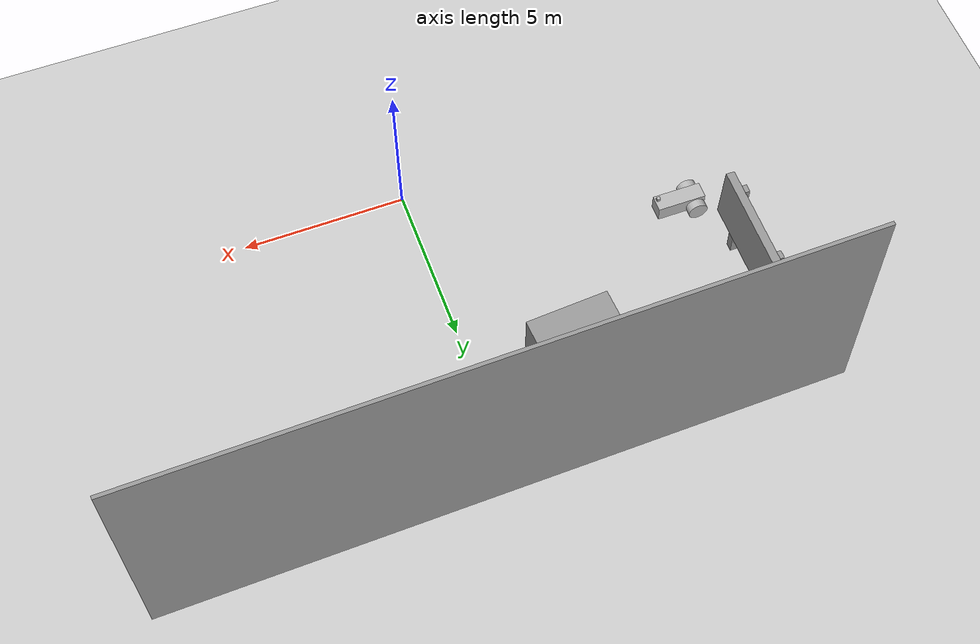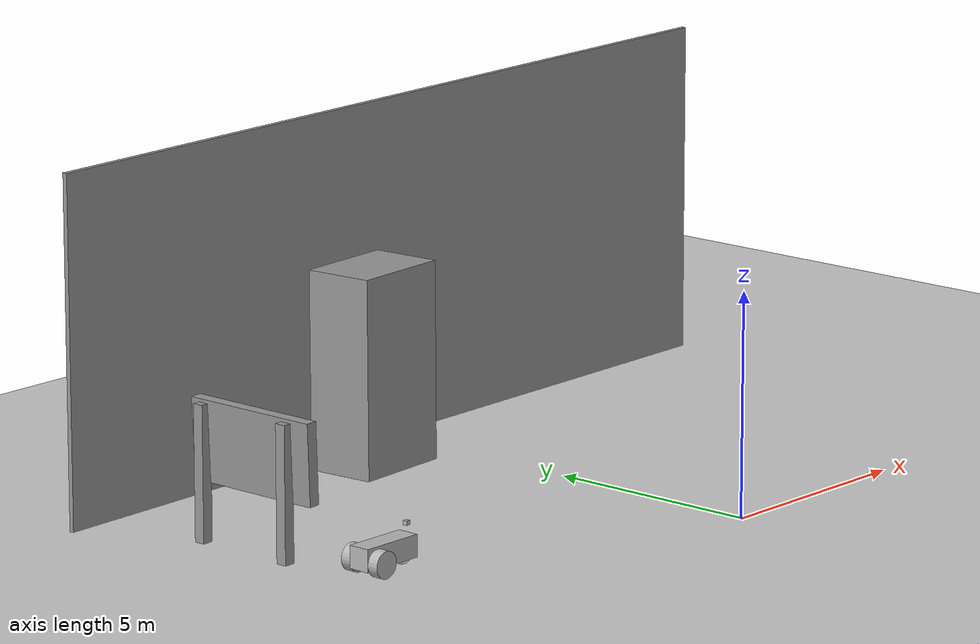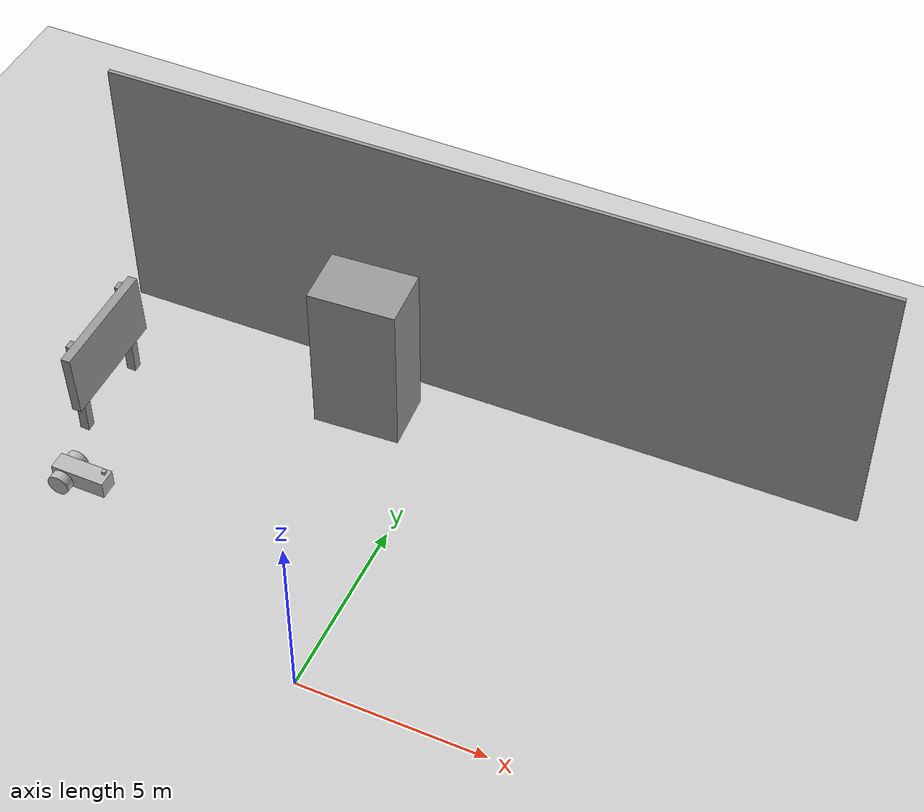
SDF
<sdf version="1.6">
 <world name="default">
  <model name="ground_plane">
   <static>1</static>
   <link name="link">
    <collision name="collision">
     <geometry><plane><normal>0 0 1</normal><size>100 100</size></plane></geometry>
     <surface>
      <contact><collide_bitmask>65535</collide_bitmask></contact>
      <friction><ode><mu>100</mu><mu2>50</mu2></ode></friction>
     </surface>
    </collision>
    <visual name="visual">
     <cast_shadows>0</cast_shadows>
     <geometry><plane><normal>0 0 1</normal><size>100 100</size></plane></geometry>
     <material>
      <script><uri>file://media/materials/scripts/gazebo.material</uri><name>Gazebo/Grey</name></script>
     </material>
    </visual>
   </link>
  </model>
  <model name="wall_clone">
   <link name="link">
    <inertial>
     <mass>1</mass>
     <inertia>
      <ixx>0.166667</ixx>
      <ixy>0</ixy>
      <ixz>0</ixz>
      <iyy>0.166667</iyy>
      <iyz>0</iyz>
      <izz>0.166667</izz>
     </inertia>
    </inertial>
    <visual name="visual">
     <geometry><box><size>20.7437 0.108573 7.82367</size></box></geometry>
     <material>
      <script><name>Gazebo/Grey</name><uri>file://media/materials/scripts/gazebo.material</uri></script>
     </material>
    </visual>
    <collision name="collision">
     <geometry><box><size>20.7437 0.108573 7.82367</size></box></geometry>
     <surface>
      <friction>
       <ode><mu>1</mu><mu2>1</mu2><fdir1>0 0 0</fdir1><slip1>0</slip1><slip2>0</slip2></ode>
       <torsional>
        <coefficient>1</coefficient>
        <patch_radius>0</patch_radius>
        <surface_radius>0</surface_radius>
        <use_patch_radius>1</use_patch_radius>
        <ode><slip>0</slip></ode>
       </torsional>
      </friction>
      <bounce><restitution_coefficient>0</restitution_coefficient><threshold>1e+06</threshold></bounce>
      <contact>
       <collide_without_contact>0</collide_without_contact>
       <collide_without_contact_bitmask>1</collide_without_contact_bitmask>
       <collide_bitmask>1</collide_bitmask>
       <ode>
        <soft_cfm>0</soft_cfm>
        <soft_erp>0.2</soft_erp>
        <kp>1e+13</kp>
        <kd>1</kd>
        <max_vel>0.01</max_vel>
        <min_depth>0</min_depth>
       </ode>
       <bullet>
        <split_impulse>1</split_impulse>
        <split_impulse_penetration_threshold>-0.01</split_impulse_penetration_threshold>
        <soft_cfm>0</soft_cfm>
        <soft_erp>0.2</soft_erp>
        <kp>1e+13</kp>
        <kd>1</kd>
       </bullet>
      </contact>
     </surface>
    </collision>
   </link>
   <static>1</static>
   <pose>0.273805 10.2413 3.86069 -0.001181 0.000467 -3.12533</pose>
  </model>
  <model name="locker">
   <link name="link">
    <inertial>
     <mass>1</mass>
     <inertia>
      <ixx>0.166667</ixx>
      <ixy>0</ixy>
      <ixz>0</ixz>
      <iyy>0.166667</iyy>
      <iyz>0</iyz>
      <izz>0.166667</izz>
     </inertia>
    </inertial>
    <visual name="visual">
     <geometry><box><size>2.37028 1.6237 4.524</size></box></geometry>
     <material>
      <script><name>Gazebo/Grey</name><uri>file://media/materials/scripts/gazebo.material</uri></script>
     </material>
    </visual>
    <collision name="collision">
     <geometry><box><size>2.37028 1.6237 4.524</size></box></geometry>
     <surface>
      <friction>
       <ode><mu>1</mu><mu2>1</mu2><fdir1>0 0 0</fdir1><slip1>0</slip1><slip2>0</slip2></ode>
       <torsional>
        <coefficient>1</coefficient>
        <patch_radius>0</patch_radius>
        <surface_radius>0</surface_radius>
        <use_patch_radius>1</use_patch_radius>
        <ode><slip>0</slip></ode>
       </torsional>
      </friction>
      <bounce><restitution_coefficient>0</restitution_coefficient><threshold>1e+06</threshold></bounce>
      <contact>
       <collide_without_contact>0</collide_without_contact>
       <collide_without_contact_bitmask>1</collide_without_contact_bitmask>
       <collide_bitmask>1</collide_bitmask>
       <ode>
        <soft_cfm>0</soft_cfm>
        <soft_erp>0.2</soft_erp>
        <kp>1e+13</kp>
        <kd>1</kd>
        <max_vel>0.01</max_vel>
        <min_depth>0</min_depth>
       </ode>
       <bullet>
        <split_impulse>1</split_impulse>
        <split_impulse_penetration_threshold>-0.01</split_impulse_penetration_threshold>
        <soft_cfm>0</soft_cfm>
        <soft_erp>0.2</soft_erp>
        <kp>1e+13</kp>
        <kd>1</kd>
       </bullet>
      </contact>
     </surface>
    </collision>
   </link>
   <static>1</static>
   <pose>-2.28494 8.56621 2.35328 -0.004837 -0.000209 0.06139</pose>
  </model>
  <model name="whiteboard">
   <link name="link_0">
    <inertial>
     <mass>1.56421</mass>
     <inertia><ixx>1.86605</ixx><ixy>0</ixy><ixz>0</ixz><iyy>0.434357</iyy><iyz>0</iyz><izz>1.44938</izz></inertia>
    </inertial>
    <pose>0.136334 -0.092702 0.461048 0 -0.039482 0</pose>
    <visual name="visual">
     <geometry><box><size>0.260435 3.32434 1.80676</size></box></geometry>
     <material>
      <lighting>1</lighting>
      <script><uri>file://media/materials/scripts/gazebo.material</uri><name>Gazebo/Grey</name></script>
      <emissive>0 0 0 1</emissive>
     </material>
    </visual>
    <collision name="collision">
     <geometry><box><size>0.260435 3.32434 1.80676</size></box></geometry>
     <surface>
      <friction>
       <ode><mu>1</mu><mu2>1</mu2><fdir1>0 0 0</fdir1><slip1>0</slip1><slip2>0</slip2></ode>
       <torsional>
        <coefficient>1</coefficient>
        <patch_radius>0</patch_radius>
        <surface_radius>0</surface_radius>
        <use_patch_radius>1</use_patch_radius>
        <ode><slip>0</slip></ode>
       </torsional>
      </friction>
      <bounce><restitution_coefficient>0</restitution_coefficient><threshold>1e+06</threshold></bounce>
      <contact>
       <collide_without_contact>0</collide_without_contact>
       <collide_without_contact_bitmask>1</collide_without_contact_bitmask>
       <collide_bitmask>1</collide_bitmask>
       <ode>
        <soft_cfm>0</soft_cfm>
        <soft_erp>0.2</soft_erp>
        <kp>1e+13</kp>
        <kd>1</kd>
        <max_vel>0.01</max_vel>
        <min_depth>0</min_depth>
       </ode>
       <bullet>
        <split_impulse>1</split_impulse>
        <split_impulse_penetration_threshold>-0.01</split_impulse_penetration_threshold>
        <soft_cfm>0</soft_cfm>
        <soft_erp>0.2</soft_erp>
        <kp>1e+13</kp>
        <kd>1</kd>
       </bullet>
      </contact>
     </surface>
    </collision>
   </link>
   <link name="link_1">
    <inertial>
     <mass>0.195483</mass>
     <inertia>
      <ixx>0.14967</ixx>
      <ixy>0</ixy>
      <ixz>0</ixz>
      <iyy>0.149754</iyy>
      <iyz>0</iyz>
      <izz>0.00210976</izz>
     </inertia>
    </inertial>
    <pose>-0.062425 1.2359 -0.230522 0 -0 0</pose>
    <visual name="visual">
     <geometry><box><size>0.259473 0.249367 3.02085</size></box></geometry>
     <material>
      <lighting>1</lighting>
      <script><uri>file://media/materials/scripts/gazebo.material</uri><name>Gazebo/Grey</name></script>
      <emissive>0 0 0 1</emissive>
     </material>
    </visual>
    <collision name="collision">
     <geometry><box><size>0.259473 0.249367 3.02085</size></box></geometry>
     <surface>
      <friction>
       <ode><mu>1</mu><mu2>1</mu2><fdir1>0 0 0</fdir1><slip1>0</slip1><slip2>0</slip2></ode>
       <torsional>
        <coefficient>1</coefficient>
        <patch_radius>0</patch_radius>
        <surface_radius>0</surface_radius>
        <use_patch_radius>1</use_patch_radius>
        <ode><slip>0</slip></ode>
       </torsional>
      </friction>
      <bounce><restitution_coefficient>0</restitution_coefficient><threshold>1e+06</threshold></bounce>
      <contact>
       <collide_without_contact>0</collide_without_contact>
       <collide_without_contact_bitmask>1</collide_without_contact_bitmask>
       <collide_bitmask>1</collide_bitmask>
       <ode>
        <soft_cfm>0</soft_cfm>
        <soft_erp>0.2</soft_erp>
        <kp>1e+13</kp>
        <kd>1</kd>
        <max_vel>0.01</max_vel>
        <min_depth>0</min_depth>
       </ode>
       <bullet>
        <split_impulse>1</split_impulse>
        <split_impulse_penetration_threshold>-0.01</split_impulse_penetration_threshold>
        <soft_cfm>0</soft_cfm>
        <soft_erp>0.2</soft_erp>
        <kp>1e+13</kp>
        <kd>1</kd>
       </bullet>
      </contact>
     </surface>
    </collision>
   </link>
   <link name="link_1_clone">
    <inertial>
     <mass>0.195483</mass>
     <inertia>
      <ixx>0.14967</ixx>
      <ixy>0</ixy>
      <ixz>0</ixz>
      <iyy>0.149754</iyy>
      <iyz>0</iyz>
      <izz>0.00210976</izz>
     </inertia>
    </inertial>
    <pose>-0.073909 -1.1432 -0.230523 0 -0 0</pose>
    <visual name="visual">
     <geometry><box><size>0.259473 0.249367 3.02085</size></box></geometry>
     <material>
      <lighting>1</lighting>
      <script><uri>file://media/materials/scripts/gazebo.material</uri><name>Gazebo/Grey</name></script>
      <shader type="pixel"/>
      <emissive>0 0 0 1</emissive>
     </material>
    </visual>
    <collision name="collision">
     <geometry><box><size>0.259473 0.249367 3.02085</size></box></geometry>
     <surface>
      <friction>
       <ode><mu>1</mu><mu2>1</mu2><fdir1>0 0 0</fdir1><slip1>0</slip1><slip2>0</slip2></ode>
       <torsional>
        <coefficient>1</coefficient>
        <patch_radius>0</patch_radius>
        <surface_radius>0</surface_radius>
        <use_patch_radius>1</use_patch_radius>
        <ode><slip>0</slip></ode>
       </torsional>
      </friction>
      <bounce><restitution_coefficient>0</restitution_coefficient><threshold>1e+06</threshold></bounce>
      <contact>
       <collide_without_contact>0</collide_without_contact>
       <collide_without_contact_bitmask>1</collide_without_contact_bitmask>
       <collide_bitmask>1</collide_bitmask>
       <ode>
        <soft_cfm>0</soft_cfm>
        <soft_erp>0.2</soft_erp>
        <kp>1e+13</kp>
        <kd>1</kd>
        <max_vel>0.01</max_vel>
        <min_depth>0</min_depth>
       </ode>
       <bullet>
        <split_impulse>1</split_impulse>
        <split_impulse_penetration_threshold>-0.01</split_impulse_penetration_threshold>
        <soft_cfm>0</soft_cfm>
        <soft_erp>0.2</soft_erp>
        <kp>1e+13</kp>
        <kd>1</kd>
       </bullet>
      </contact>
     </surface>
    </collision>
   </link>
   <joint name="link_0_JOINT_0" type="fixed">
    <parent>link_0</parent>
    <child>link_1</child>
    <physics>
     <ode><limit><cfm>0</cfm><erp>0.2</erp></limit><suspension><cfm>0</cfm><erp>0.2</erp></suspension></ode>
    </physics>
   </joint>
   <joint name="link_0_JOINT_1" type="fixed">
    <parent>link_0</parent>
    <child>link_1_clone</child>
    <physics>
     <ode><limit><cfm>0</cfm><erp>0.2</erp></limit><suspension><cfm>0</cfm><erp>0.2</erp></suspension></ode>
    </physics>
   </joint>
   <static>1</static>
   <pose>-8.73683 6.19219 1.7386 0 -0 0</pose>
  </model>
  <model name="fcar">
   <link name="caster">
    <inertial>
     <mass>1</mass>
     <inertia><ixx>0.1</ixx><ixy>0</ixy><ixz>0</ixz><iyy>0.1</iyy><iyz>0</iyz><izz>0.1</izz></inertia>
    </inertial>
    <pose>-0.55 0 0.2 0 -0 0</pose>
    <visual name="visual">
     <geometry><sphere><radius>0.2</radius></sphere></geometry>
     <material><shader type="pixel"/><emissive>0 0 0 1</emissive></material>
    </visual>
    <collision name="collision">
     <geometry><sphere><radius>0.2</radius></sphere></geometry>
     <surface>
      <friction>
       <ode><mu>1</mu><mu2>1</mu2><fdir1>0 0 0</fdir1><slip1>0</slip1><slip2>0</slip2></ode>
       <torsional>
        <coefficient>1</coefficient>
        <patch_radius>0</patch_radius>
        <surface_radius>0</surface_radius>
        <use_patch_radius>1</use_patch_radius>
        <ode><slip>0</slip></ode>
       </torsional>
      </friction>
      <bounce><restitution_coefficient>0</restitution_coefficient><threshold>1e+06</threshold></bounce>
      <contact>
       <collide_without_contact>0</collide_without_contact>
       <collide_without_contact_bitmask>1</collide_without_contact_bitmask>
       <collide_bitmask>1</collide_bitmask>
       <ode>
        <soft_cfm>0</soft_cfm>
        <soft_erp>0.2</soft_erp>
        <kp>1e+13</kp>
        <kd>1</kd>
        <max_vel>0.01</max_vel>
        <min_depth>0</min_depth>
       </ode>
       <bullet>
        <split_impulse>1</split_impulse>
        <split_impulse_penetration_threshold>-0.01</split_impulse_penetration_threshold>
        <soft_cfm>0</soft_cfm>
        <soft_erp>0.2</soft_erp>
        <kp>1e+13</kp>
        <kd>1</kd>
       </bullet>
      </contact>
     </surface>
    </collision>
   </link>
   <link name="left_wheel">
    <inertial>
     <mass>1</mass>
     <inertia><ixx>0.145833</ixx><ixy>0</ixy><ixz>0</ixz><iyy>0.145833</iyy><iyz>0</iyz><izz>0.125</izz></inertia>
    </inertial>
    <pose>0.45 -0.375029 0.3 1.5707 -0 0</pose>
    <visual name="visual">
     <geometry><cylinder><radius>0.3</radius><length>0.25</length></cylinder></geometry>
     <material><shader type="pixel"/></material>
    </visual>
    <collision name="collision">
     <geometry><cylinder><radius>0.3</radius><length>0.25</length></cylinder></geometry>
     <surface>
      <friction>
       <ode><mu>1</mu><mu2>1</mu2><fdir1>0 0 0</fdir1><slip1>0</slip1><slip2>0</slip2></ode>
       <torsional>
        <coefficient>1</coefficient>
        <patch_radius>0</patch_radius>
        <surface_radius>0</surface_radius>
        <use_patch_radius>1</use_patch_radius>
        <ode><slip>0</slip></ode>
       </torsional>
      </friction>
      <bounce><restitution_coefficient>0</restitution_coefficient><threshold>1e+06</threshold></bounce>
      <contact>
       <collide_without_contact>0</collide_without_contact>
       <collide_without_contact_bitmask>1</collide_without_contact_bitmask>
       <collide_bitmask>1</collide_bitmask>
       <ode>
        <soft_cfm>0</soft_cfm>
        <soft_erp>0.2</soft_erp>
        <kp>1e+13</kp>
        <kd>1</kd>
        <max_vel>0.01</max_vel>
        <min_depth>0</min_depth>
       </ode>
       <bullet>
        <split_impulse>1</split_impulse>
        <split_impulse_penetration_threshold>-0.01</split_impulse_penetration_threshold>
        <soft_cfm>0</soft_cfm>
        <soft_erp>0.2</soft_erp>
        <kp>1e+13</kp>
        <kd>1</kd>
       </bullet>
      </contact>
     </surface>
    </collision>
   </link>
   <link name="mbody">
    <inertial>
     <mass>0.5</mass>
     <inertia>
      <ixx>0.0287018</ixx>
      <ixy>0</ixy>
      <ixz>0</ixz>
      <iyy>0.0850413</iyy>
      <iyz>0</iyz>
      <izz>0.0951773</izz>
     </inertia>
    </inertial>
    <pose>0 -0 0.4 0 -0 0</pose>
    <visual name="visual">
     <geometry><box><size>1.5 0.5 0.5</size></box></geometry>
     <material><shader type="pixel"/><emissive>0 0 0 1</emissive></material>
    </visual>
    <collision name="collision">
     <geometry><box><size>1.5 0.5 0.5</size></box></geometry>
     <surface>
      <friction>
       <ode><mu>1</mu><mu2>1</mu2><fdir1>0 0 0</fdir1><slip1>0</slip1><slip2>0</slip2></ode>
       <torsional>
        <coefficient>1</coefficient>
        <patch_radius>0</patch_radius>
        <surface_radius>0</surface_radius>
        <use_patch_radius>1</use_patch_radius>
        <ode><slip>0</slip></ode>
       </torsional>
      </friction>
      <bounce><restitution_coefficient>0</restitution_coefficient><threshold>1e+06</threshold></bounce>
      <contact>
       <collide_without_contact>0</collide_without_contact>
       <collide_without_contact_bitmask>1</collide_without_contact_bitmask>
       <collide_bitmask>1</collide_bitmask>
       <ode>
        <soft_cfm>0</soft_cfm>
        <soft_erp>0.2</soft_erp>
        <kp>1e+13</kp>
        <kd>1</kd>
        <max_vel>0.01</max_vel>
        <min_depth>0</min_depth>
       </ode>
       <bullet>
        <split_impulse>1</split_impulse>
        <split_impulse_penetration_threshold>-0.01</split_impulse_penetration_threshold>
        <soft_cfm>0</soft_cfm>
        <soft_erp>0.2</soft_erp>
        <kp>1e+13</kp>
        <kd>1</kd>
       </bullet>
      </contact>
     </surface>
    </collision>
   </link>
   <link name="right_wheel">
    <inertial>
     <mass>1</mass>
     <inertia><ixx>0.145833</ixx><ixy>0</ixy><ixz>0</ixz><iyy>0.145833</iyy><iyz>0</iyz><izz>0.125</izz></inertia>
    </inertial>
    <pose>0.45 0.375029 0.3 1.5707 -0 0</pose>
    <visual name="visual">
     <geometry><cylinder><radius>0.3</radius><length>0.25</length></cylinder></geometry>
     <material><shader type="pixel"/></material>
    </visual>
    <collision name="collision">
     <geometry><cylinder><radius>0.3</radius><length>0.25</length></cylinder></geometry>
     <surface>
      <friction>
       <ode><mu>1</mu><mu2>1</mu2><fdir1>0 0 0</fdir1><slip1>0</slip1><slip2>0</slip2></ode>
       <torsional>
        <coefficient>1</coefficient>
        <patch_radius>0</patch_radius>
        <surface_radius>0</surface_radius>
        <use_patch_radius>1</use_patch_radius>
        <ode><slip>0</slip></ode>
       </torsional>
      </friction>
      <bounce><restitution_coefficient>0</restitution_coefficient><threshold>1e+06</threshold></bounce>
      <contact>
       <collide_without_contact>0</collide_without_contact>
       <collide_without_contact_bitmask>1</collide_without_contact_bitmask>
       <collide_bitmask>1</collide_bitmask>
       <ode>
        <soft_cfm>0</soft_cfm>
        <soft_erp>0.2</soft_erp>
        <kp>1e+13</kp>
        <kd>1</kd>
        <max_vel>0.01</max_vel>
        <min_depth>0</min_depth>
       </ode>
       <bullet>
        <split_impulse>1</split_impulse>
        <split_impulse_penetration_threshold>-0.01</split_impulse_penetration_threshold>
        <soft_cfm>0</soft_cfm>
        <soft_erp>0.2</soft_erp>
        <kp>1e+13</kp>
        <kd>1</kd>
       </bullet>
      </contact>
     </surface>
    </collision>
   </link>
   <model name="camera">
    <pose>-0.698828 0.002571 0.862719 0 -0 3.14132</pose>
    <link name="link">
     <inertial>
      <mass>0.1</mass>
      <inertia>
       <ixx>0.000166667</ixx>
       <iyy>0.000166667</iyy>
       <izz>0.000166667</izz>
       <ixy>0</ixy>
       <ixz>0</ixz>
       <iyz>0</iyz>
      </inertia>
     </inertial>
     <collision name="collision"><geometry><box><size>0.1 0.1 0.1</size></box></geometry></collision>
     <visual name="visual"><geometry><box><size>0.1 0.1 0.1</size></box></geometry></visual>
     <sensor name="camera" type="camera">
      <camera name="__default__">
       <horizontal_fov>1.047</horizontal_fov>
       <image><width>320</width><height>240</height></image>
       <clip><near>0.1</near><far>100</far></clip>
      </camera>
      <always_on>1</always_on>
      <update_rate>30</update_rate>
      <visualize>1</visualize>
      <plugin name="cam" filename="libgazebo_ros_camera.so">
       <ros>
        <namespace>/cam</namespace>
        <argument>image_raw:=custom_img</argument>
        <argument>camera_test_info:=custom_info</argument>
       </ros>
       <camera_name>custom_camera</camera_name>
       <frame_name>custom_frame</frame_name>
       <hack_baseline>0.07</hack_baseline>
      </plugin>
     </sensor>
    </link>
   </model>
   <joint name="c_joint" type="fixed">
    <parent>mbody</parent>
    <child>camera::link</child>
    <physics>
     <ode><limit><cfm>0</cfm><erp>0.2</erp></limit><suspension><cfm>0</cfm><erp>0.2</erp></suspension></ode>
    </physics>
   </joint>
   <joint name="left_joint" type="revolute">
    <parent>mbody</parent>
    <child>left_wheel</child>
    <axis>
     <xyz>0 0 1</xyz>
     <use_parent_model_frame>0</use_parent_model_frame>
     <limit>
      <lower>-1.79769e+308</lower>
      <upper>1.79769e+308</upper>
      <effort>-1</effort>
      <velocity>-1</velocity>
     </limit>
     <dynamics>
      <spring_reference>0</spring_reference>
      <spring_stiffness>0</spring_stiffness>
      <damping>0</damping>
      <friction>0</friction>
     </dynamics>
    </axis>
    <physics>
     <ode><limit><cfm>0</cfm><erp>0.2</erp></limit><suspension><cfm>0</cfm><erp>0.2</erp></suspension></ode>
    </physics>
   </joint>
   <joint name="mbody_JOINT_0" type="ball">
    <parent>mbody</parent>
    <child>caster</child>
    <physics>
     <ode><limit><cfm>0</cfm><erp>0.2</erp></limit><suspension><cfm>0</cfm><erp>0.2</erp></suspension></ode>
    </physics>
   </joint>
   <joint name="right_joint" type="revolute">
    <parent>mbody</parent>
    <child>right_wheel</child>
    <axis>
     <xyz>0 0 1</xyz>
     <use_parent_model_frame>0</use_parent_model_frame>
     <limit>
      <lower>-1.79769e+308</lower>
      <upper>1.79769e+308</upper>
      <effort>-1</effort>
      <velocity>-1</velocity>
     </limit>
     <dynamics>
      <spring_reference>0</spring_reference>
      <spring_stiffness>0</spring_stiffness>
      <damping>0</damping>
      <friction>0</friction>
     </dynamics>
    </axis>
    <physics>
     <ode><limit><cfm>0</cfm><erp>0.2</erp></limit><suspension><cfm>0</cfm><erp>0.2</erp></suspension></ode>
    </physics>
   </joint>
   <static>0</static>
   <plugin name="diff_drive" filename="libgazebo_ros_diff_drive.so">
    <ros><namespace>/pos</namespace><argument>cmd_vel:=cmd_pos</argument><argument>odom:=odom_pos</argument></ros>
    <left_joint>left_joint</left_joint>
    <right_joint>right_joint</right_joint>
    <wheel_separation>1.25</wheel_separation>
    <wheel_diameter>0.6</wheel_diameter>
    <max_wheel_torque>20</max_wheel_torque>
    <max_wheel_acceleration>1.0</max_wheel_acceleration>
    <publish_odom>1</publish_odom>
    <publish_odom_tf>1</publish_odom_tf>
    <publish_wheel_tf>1</publish_wheel_tf>
    <odometry_frame>odom_demo</odometry_frame>
    <robot_base_frame>chassis</robot_base_frame>
   </plugin>
   <pose>-7.78147 3.22494 -6.6e-05 -0.000556 -0.000122 3.13817</pose>
  </model>
 </world>
</sdf>
